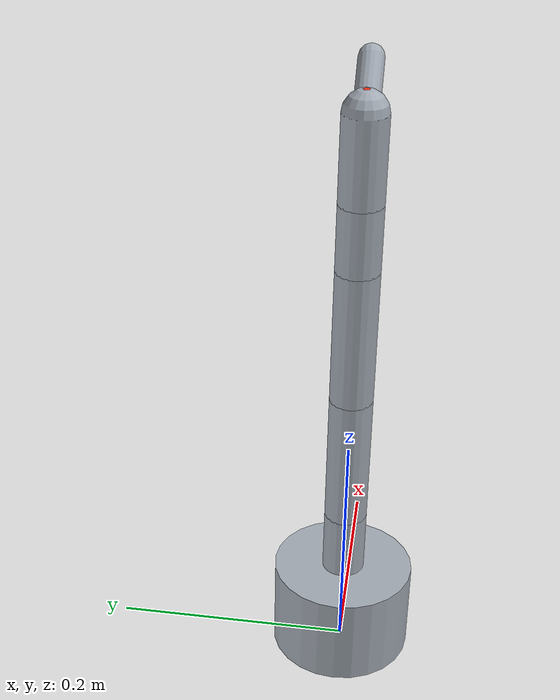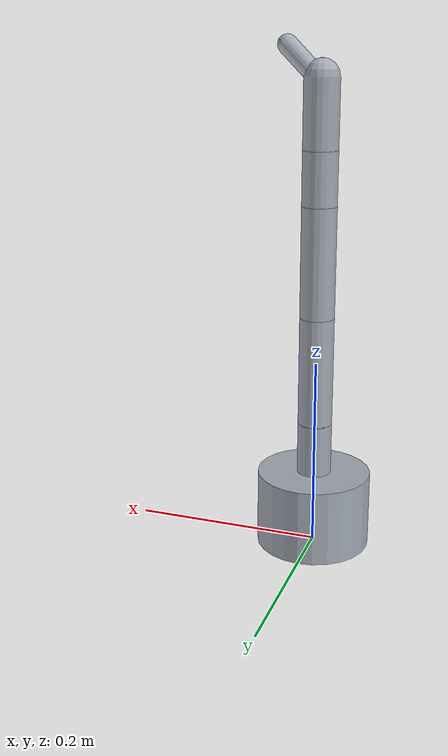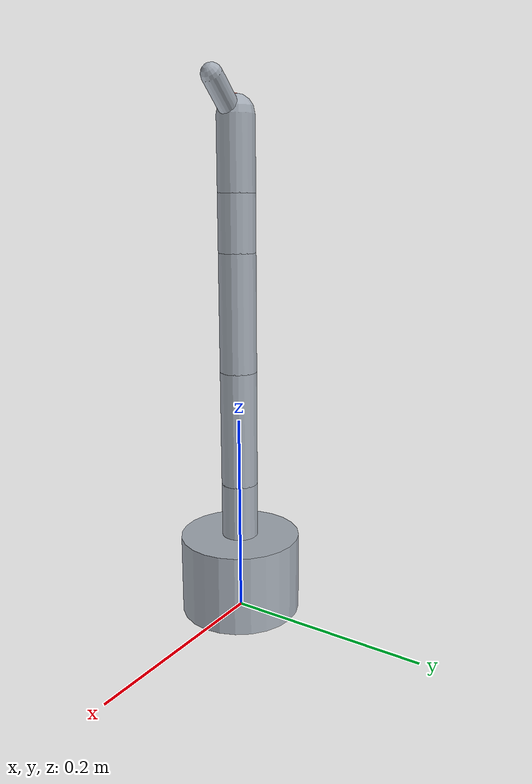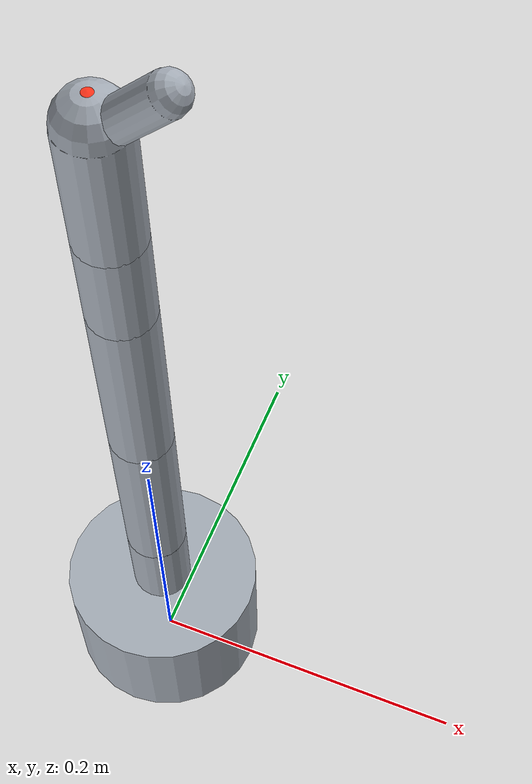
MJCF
<mujoco model="so101_nominal_kinematics">
  <compiler angle="radian"/>
  <option timestep="0.03333333333333333" gravity="0 0 -9.81"/>
  <default>
    <joint type="hinge" damping="0.05" armature="0.01" limited="true"/>
    <geom type="capsule" size="0.018" density="600" contype="0" conaffinity="0" rgba="0.65 0.68 0.72 1"/>
    <position kp="16" kv="1"/>
  </default>
  <worldbody>
    <body name="base" pos="0 0 0.04">
      <geom type="cylinder" size="0.06 0.04"/>
      <body name="shoulder" pos="0 0 0.04">
        <joint name="shoulder_pan" axis="0 0 1" range="-1.9 1.9"/>
        <geom fromto="0 0 0 0 0 0.055"/>
        <body name="upper_arm" pos="0 0 0.055">
          <joint name="shoulder_lift" axis="0 1 0" range="-1.75 1.75"/>
          <geom fromto="0 0 0 0 0 0.115"/>
          <body name="forearm" pos="0 0 0.115">
            <joint name="elbow_flex" axis="0 1 0" range="-1.75 1.75"/>
            <geom fromto="0 0 0 0 0 0.115"/>
            <body name="wrist" pos="0 0 0.115">
              <joint name="wrist_flex" axis="0 1 0" range="-1.75 1.75"/>
              <geom fromto="0 0 0 0 0 0.055"/>
              <body name="tool" pos="0 0 0.055">
                <joint name="wrist_roll" axis="0 0 1" range="-3.14159 3.14159"/>
                <geom fromto="0 0 0 0 0 0.07"/>
                <site name="ee_site" pos="0 0 0.08" size="0.008" rgba="1 0.2 0.1 1"/>
                <body name="gripper" pos="0 0 0.065">
                  <joint name="gripper" axis="0 1 0" range="0 1.0"/>
                  <geom fromto="0 0 0 0.035 0 0.035" size="0.01"/>
                </body>
              </body>
            </body>
          </body>
        </body>
      </body>
    </body>
  </worldbody>
  <actuator>
    <position name="shoulder_pan" joint="shoulder_pan" ctrlrange="-1.9 1.9"/>
    <position name="shoulder_lift" joint="shoulder_lift" ctrlrange="-1.75 1.75"/>
    <position name="elbow_flex" joint="elbow_flex" ctrlrange="-1.75 1.75"/>
    <position name="wrist_flex" joint="wrist_flex" ctrlrange="-1.75 1.75"/>
    <position name="wrist_roll" joint="wrist_roll" ctrlrange="-3.14159 3.14159"/>
  </actuator>
</mujoco>
